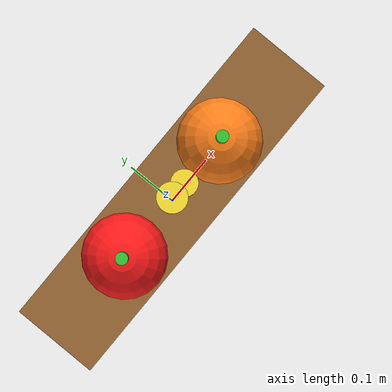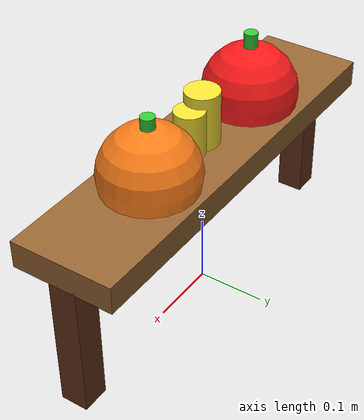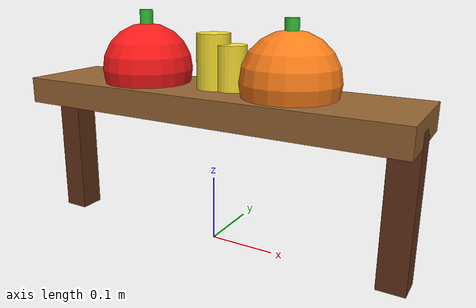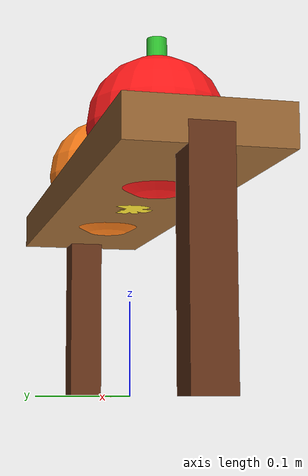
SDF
<?xml version="1.0"?>
<sdf version="1.7">
  <model name="bench_with_fruits">
    <static>true</static>
    <link name="bench_link">
      <!-- Bench seat -->
      <visual name="bench_seat">
        <geometry>
          <box>
            <size>0.6 0.15 0.04</size>
          </box>
        </geometry>
        <pose>0 0 0.22 0 0 0</pose>
        <material>
          <ambient>0.6 0.4 0.2 1</ambient>
          <diffuse>0.6 0.4 0.2 1</diffuse>
        </material>
      </visual>
      <!-- Bench legs -->
      <visual name="bench_leg_left">
        <geometry>
          <box>
            <size>0.04 0.04 0.22</size>
          </box>
        </geometry>
        <pose>-0.28 0 0.11 0 0 0</pose>
        <material>
          <ambient>0.4 0.2 0.1 1</ambient>
          <diffuse>0.4 0.2 0.1 1</diffuse>
        </material>
      </visual>
      <visual name="bench_leg_right">
        <geometry>
          <box>
            <size>0.04 0.04 0.22</size>
          </box>
        </geometry>
        <pose>0.28 0 0.11 0 0 0</pose>
        <material>
          <ambient>0.4 0.2 0.1 1</ambient>
          <diffuse>0.4 0.2 0.1 1</diffuse>
        </material>
      </visual>
      <!-- Apple -->
      <visual name="apple_body">
        <geometry>
          <sphere>
            <radius>0.07</radius>
          </sphere>
        </geometry>
        <pose>-0.12 0 0.26 0 0 0</pose>
        <material>
          <ambient>1 0.1 0.1 1</ambient>
          <diffuse>1 0.1 0.1 1</diffuse>
        </material>
      </visual>
      <visual name="apple_stem">
        <geometry>
          <cylinder>
            <radius>0.01</radius>
            <length>0.04</length>
          </cylinder>
        </geometry>
        <pose>-0.12 0 0.33 0 0 0</pose>
        <material>
          <ambient>0.2 0.8 0.2 1</ambient>
          <diffuse>0.2 0.8 0.2 1</diffuse>
        </material>
      </visual>
      <!-- Banana -->
      <visual name="banana_body_1">
        <geometry>
          <cylinder>
            <radius>0.025</radius>
            <length>0.12</length>
          </cylinder>
        </geometry>
        <pose>0 0 0.26 0 0 0.3</pose>
        <material>
          <ambient>1 0.9 0.2 1</ambient>
          <diffuse>1 0.9 0.2 1</diffuse>
        </material>
      </visual>
      <visual name="banana_body_2">
        <geometry>
          <cylinder>
            <radius>0.022</radius>
            <length>0.09</length>
          </cylinder>
        </geometry>
        <pose>0.03 0 0.26 0 0 0.6</pose>
        <material>
          <ambient>1 0.9 0.2 1</ambient>
          <diffuse>1 0.9 0.2 1</diffuse>
        </material>
      </visual>
      <visual name="banana_tip">
        <geometry>
          <sphere>
            <radius>0.012</radius>
          </sphere>
        </geometry>
        <pose>0.09 0 0.26 0 0 0</pose>
        <material>
          <ambient>0.4 0.2 0.1 1</ambient>
          <diffuse>0.4 0.2 0.1 1</diffuse>
        </material>
      </visual>
      <!-- Orange -->
      <visual name="orange_body">
        <geometry>
          <sphere>
            <radius>0.07</radius>
          </sphere>
        </geometry>
        <pose>0.12 0 0.26 0 0 0</pose>
        <material>
          <ambient>1 0.5 0.1 1</ambient>
          <diffuse>1 0.5 0.1 1</diffuse>
        </material>
      </visual>
      <visual name="orange_stem">
        <geometry>
          <cylinder>
            <radius>0.01</radius>
            <length>0.03</length>
          </cylinder>
        </geometry>
        <pose>0.12 0 0.33 0 0 0</pose>
        <material>
          <ambient>0.2 0.8 0.2 1</ambient>
          <diffuse>0.2 0.8 0.2 1</diffuse>
        </material>
      </visual>
    </link>
  </model>
</sdf>
